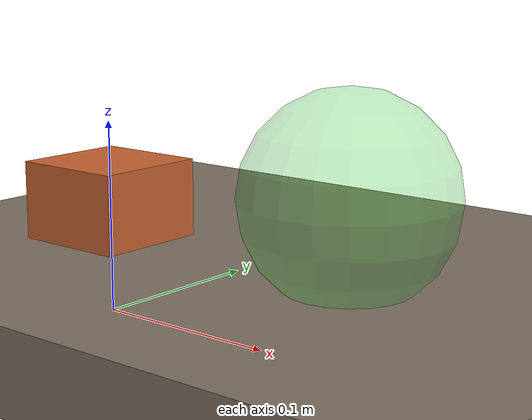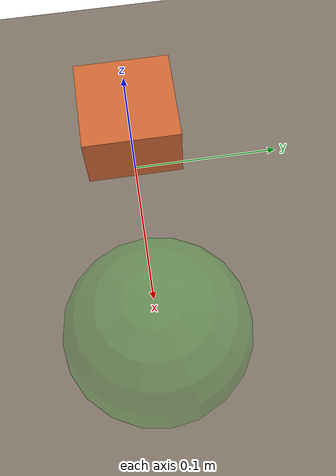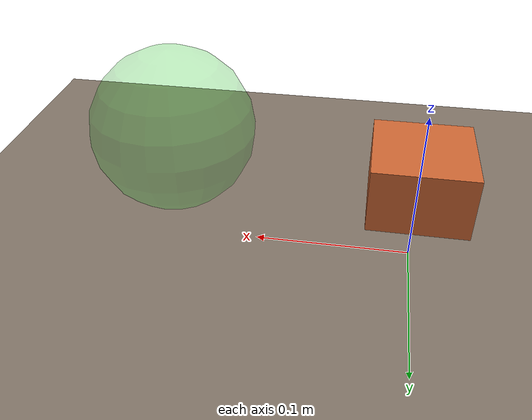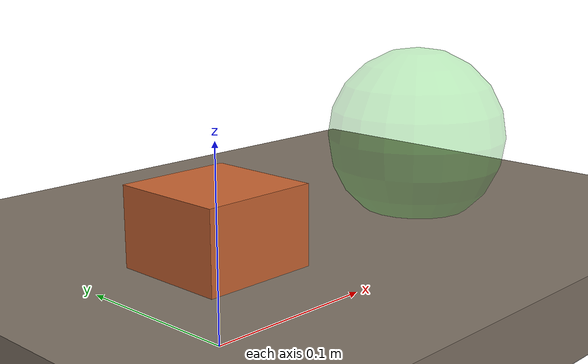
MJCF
<?xml version="1.0" encoding="utf-8"?>
<mujoco model="pick_and_place">
  <compiler angle="radian" autolimits="true"/>
  <option timestep="0.002" gravity="0 0 -9.81"/>
  <worldbody>
    <geom name="ground" type="plane" size="1 1 0.1" condim="3"/>
    <light name="main" pos="0.5 0.5 1.2" dir="0 0 -1" directional="true"/>
    <camera name="main" pos="0.800 0.600 0.500" fovy="60" mode="fixed"/>
    <site name="target_zone" pos="0.15 0 0.08" size="0.05 0.05 0.02" rgba="0.2 0.8 0.2 0.3"/>
    <body name="surface_table" pos="0 0 0"><geom name="table_geom" type="box" size="0.4 0.3 0.02" pos="0 0 0.02" rgba="0.5 0.45 0.4 1" condim="3" friction="1.2 0.005 0.0001"/></body>
    <body name="object_box" pos="0 0 0.05"><freejoint name="box_joint"/><geom name="box_geom" type="box" size="0.03 0.03 0.03" mass="0.1" rgba="0.8 0.4 0.2 1"/></body>
  </worldbody>
  <contact/>
</mujoco>
